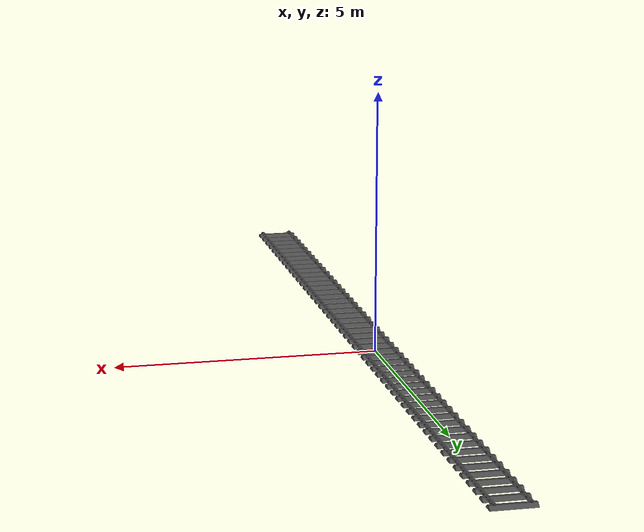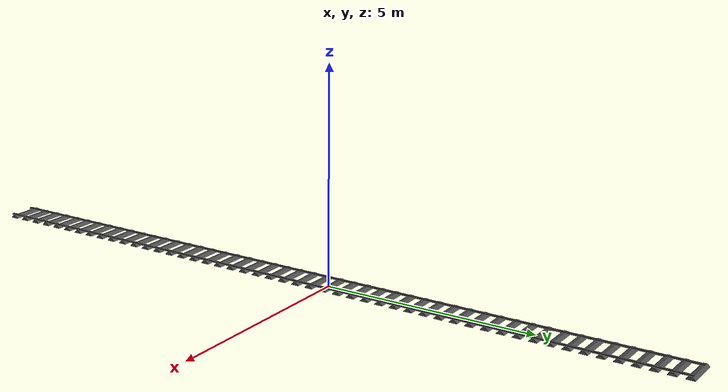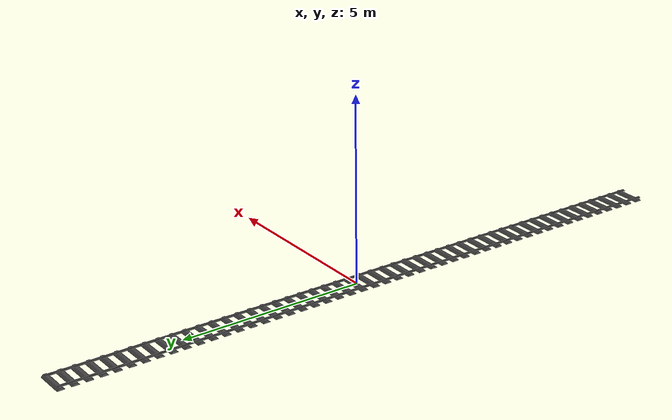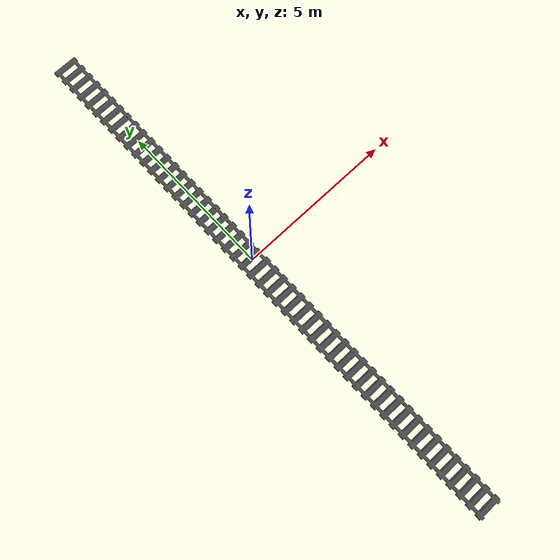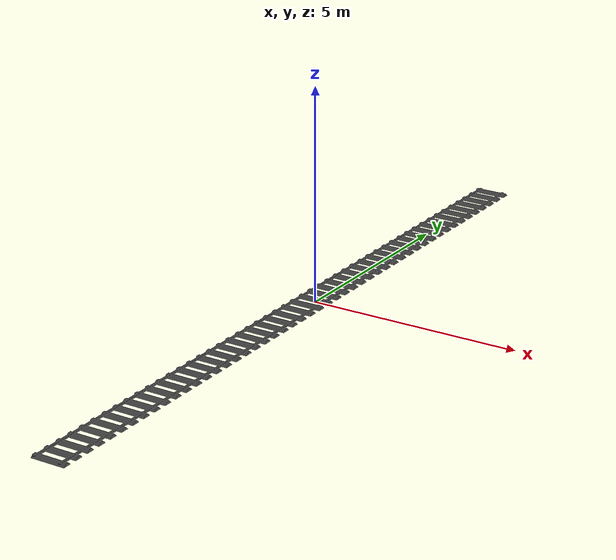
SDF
<?xml version='1.0'?>
<sdf version='1.7'>
  <model name='gleis'>
    <static>1</static>
    <link name='link_0'>
      <inertial>
        <mass>1</mass>
        <inertia>
          <ixx>0.0</ixx>
          <ixy>0</ixy>
          <ixz>0</ixz>
          <iyy>0.0</iyy>
          <iyz>0</iyz>
          <izz>0.0</izz>
        </inertia>
      </inertial>
      <pose>0 0 0 0 0 0</pose>
      <visual name='visual'>
        <pose>0 0 0 0 0 -1.571</pose>
        <geometry>
          <mesh>
            <uri>model://gleis/meshes/Gleisen.stl</uri>
            <scale>0.002 0.002 0.001</scale>
          </mesh>
        </geometry>
        <material>
          <lighting>1</lighting>
          <ambient>0.20 0.20 0.20 1</ambient>
          <diffuse>0.30 0.30 0.30 1</diffuse>
          <specular>0.15 0.15 0.15 1</specular>
          <shader type='pixel'/>
        </material>
        <transparency>0</transparency>
        <cast_shadows>1</cast_shadows>
      </visual>
      <collision name='collision'>
        <pose>0 0 0 0 0 -1.571</pose>
        <geometry>
          <mesh>
            <uri>model://gleis/meshes/Gleisen.stl</uri>
            <scale>0.002 0.002 0.001</scale>
          </mesh>
        </geometry>
      </collision>
    </link>
    <static>1</static>
    <allow_auto_disable>1</allow_auto_disable>
  </model>
</sdf>
